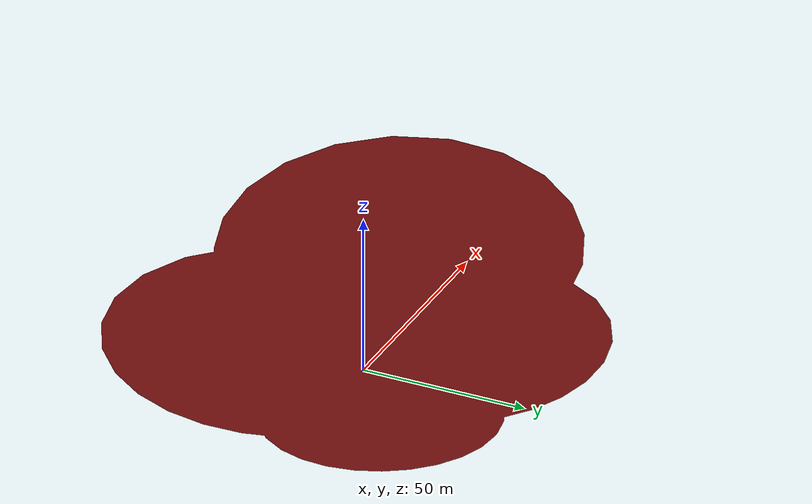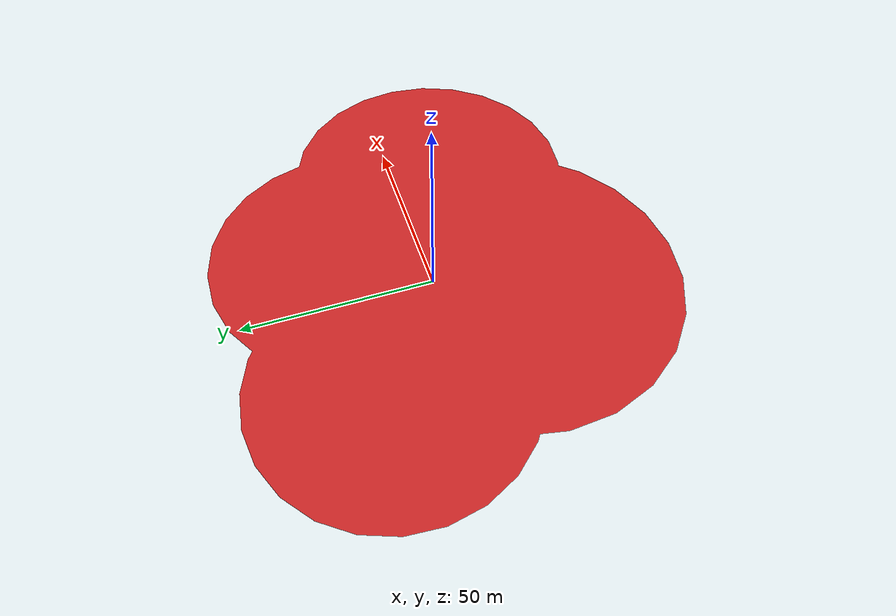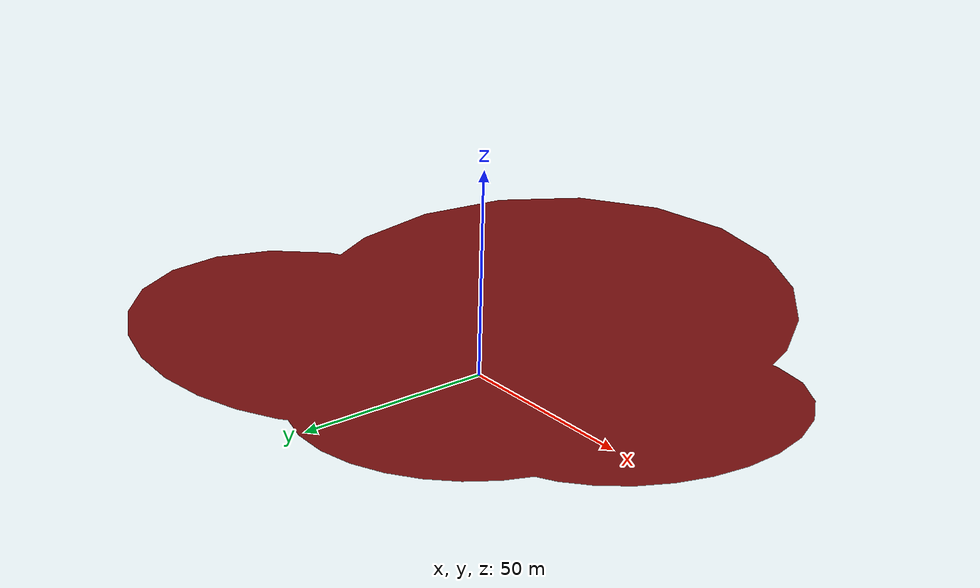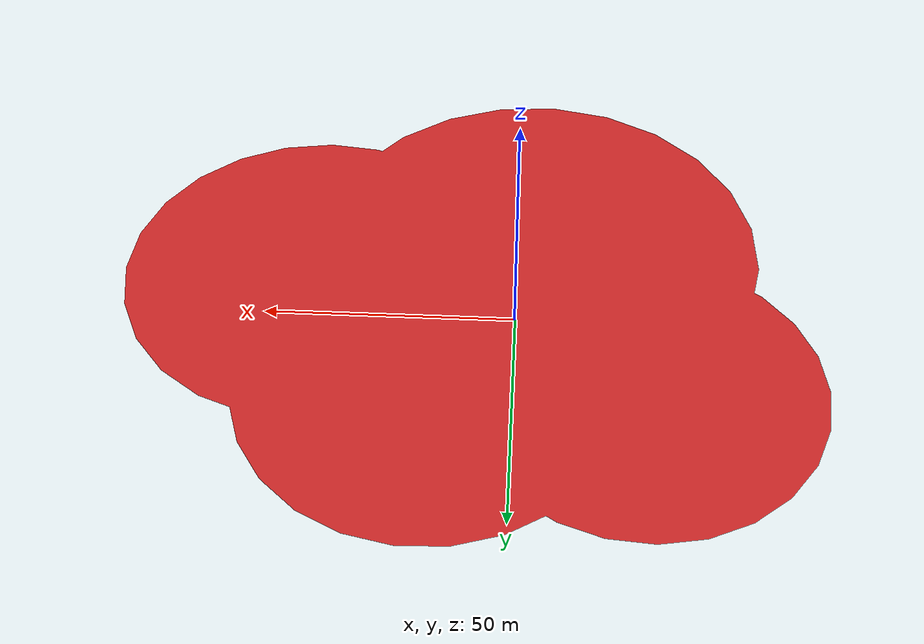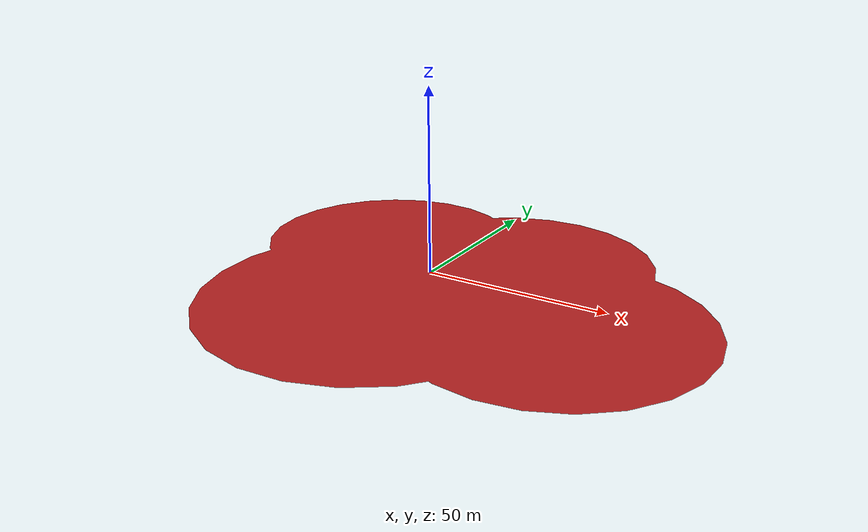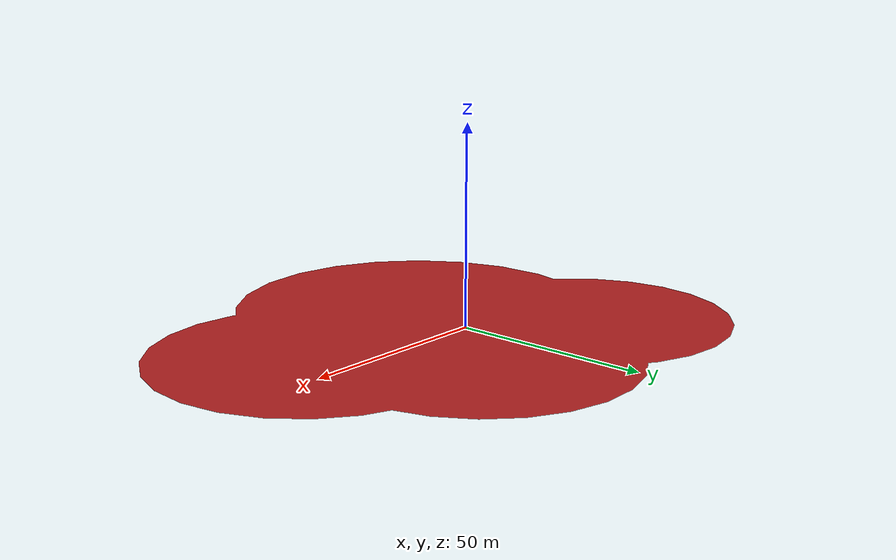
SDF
<?xml version="1.0" ?>
<sdf version="1.5">
  <model name="oil_spill">
    <link name="oil">
    <visual name="oil_spill">
        <cast_shadows>false</cast_shadows>
        <pose>0 0 0.05 0 0 0</pose>
        <geometry>
          <mesh>
            <uri>model://oil_spill/meshes/oil_spill.dae</uri>
            <scale>1.0 1.0 1.0</scale>
          </mesh>
        </geometry>
        <material>
            <script>
              <uri>file://media/materials/scripts/gazebo.material</uri>
              <name>Gazebo/Red</name>
            </script>
        </material>
      </visual>
      <kinematic>1</kinematic>
    </link>
  </model>
</sdf>
